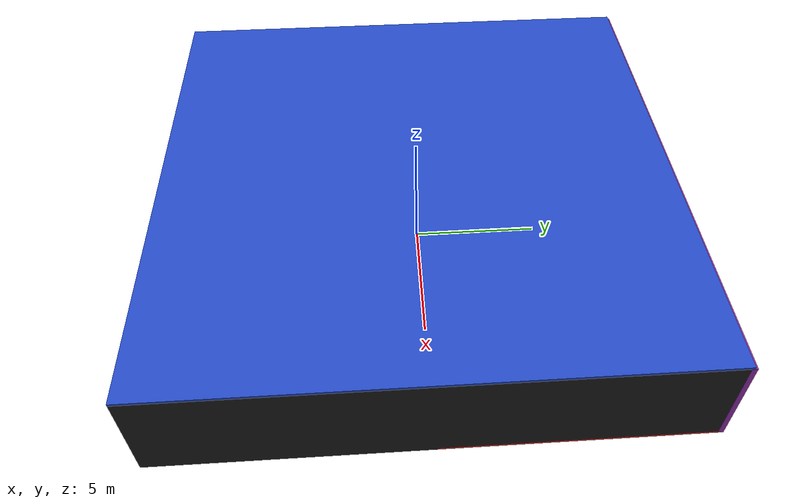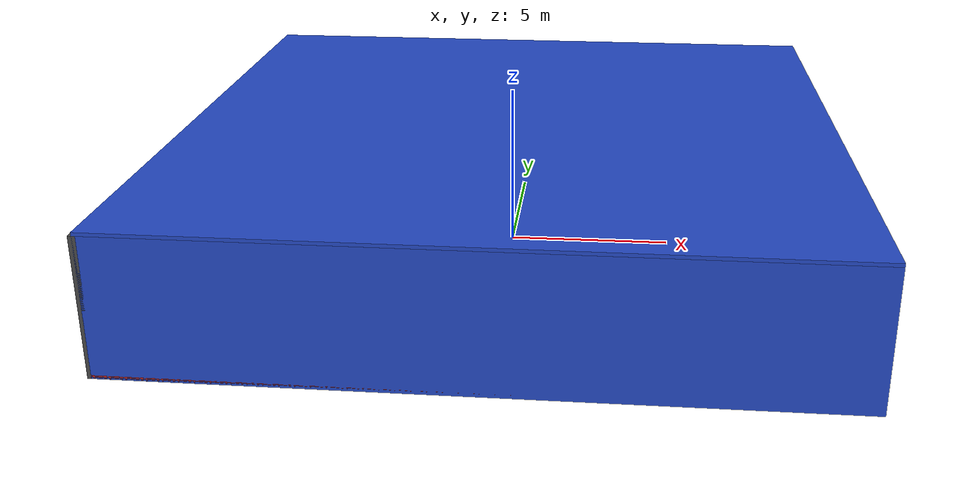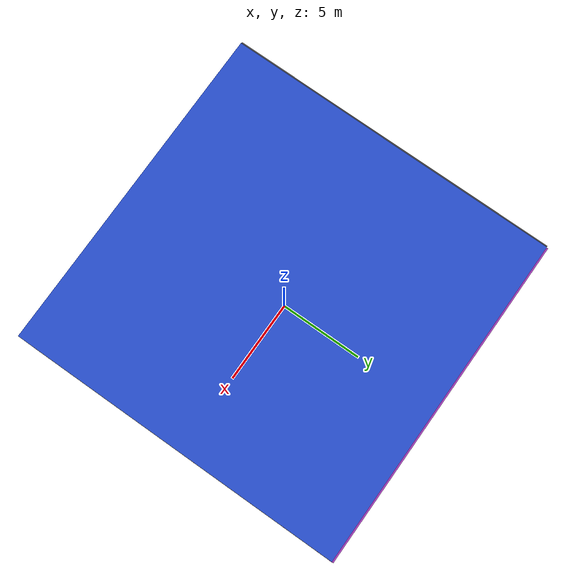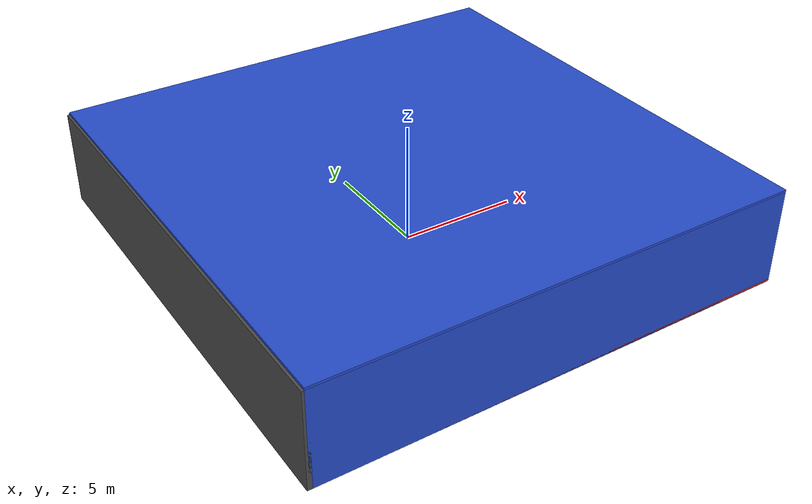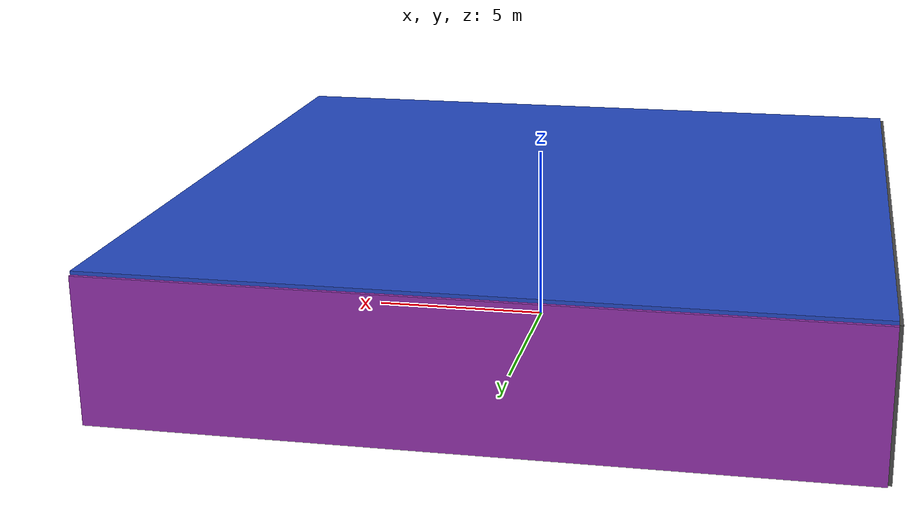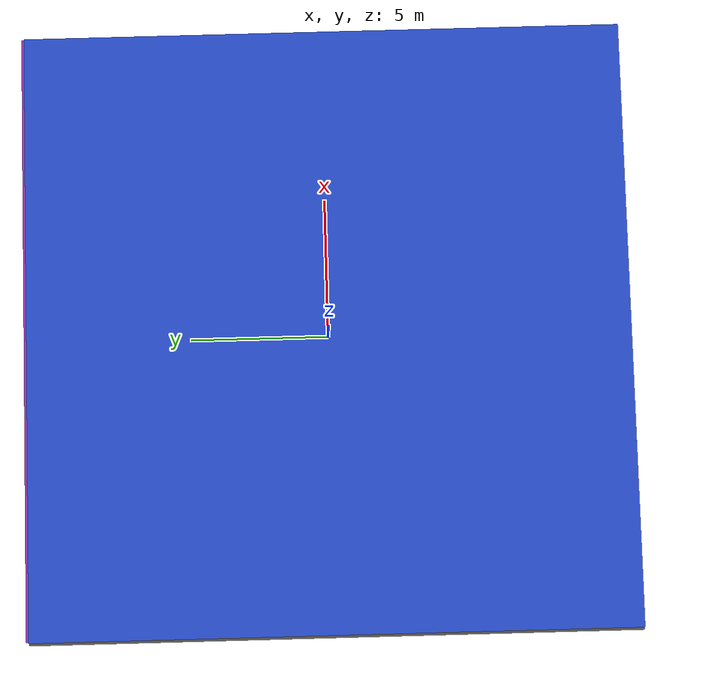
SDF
<sdf version="1.4">
 <world name="default">
  <physics type="ode">
   <max_step_size>0.001</max_step_size>
   <real_time_factor>1</real_time_factor>
   <real_time_update_rate>1000</real_time_update_rate>
   <gravity>0 0 -9.8</gravity>
  </physics>
  <scene><ambient>0.4 0.4 0.4 1</ambient><background>0.7 0.7 0.7 1</background><shadows>1</shadows></scene>
  <model name="Surrounding">
   <static>1</static>
   <link name="Ceiling">
    <collision name="Ceiling_Collision"><geometry><box><size>20 20 0.1</size></box></geometry></collision>
    <visual name="Ceiling_Visual">
     <geometry><box><size>20 20 0.1</size></box></geometry>
     <material>
      <script><uri>file://media/materials/scripts/gazebo.material</uri><name>Gazebo/BlueGlow</name></script>
     </material>
    </visual>
    <pose>0 0 4.05 0 0 0</pose>
   </link>
   <link name="Wall_South">
    <collision name="Wall_South_Collision">
     <geometry><box><size>20 0 4</size></box></geometry>
     <pose>0 0 2 0 -0 0</pose>
    </collision>
    <visual name="Wall_South_Visual">
     <pose>0 0 2 0 -0 0</pose>
     <geometry><box><size>20 0 4</size></box></geometry>
     <material>
      <script><uri>file://media/materials/scripts/gazebo.material</uri><name>Gazebo/Blue</name></script>
     </material>
    </visual>
    <velocity_decay><linear>0</linear><angular>0</angular></velocity_decay>
    <pose>0 -10 0 0 -0 0</pose>
   </link>
   <link name="Wall_East">
    <collision name="Wall_21_Collision">
     <geometry><box><size>20 0 4</size></box></geometry>
     <pose>0 0 2 0 -0 0</pose>
    </collision>
    <visual name="Wall_21_Visual">
     <pose>0 0 2 0 -0 0</pose>
     <geometry><box><size>20 0 4</size></box></geometry>
     <material>
      <script><uri>file://media/materials/scripts/gazebo.material</uri><name>Gazebo/Black</name></script>
     </material>
    </visual>
    <velocity_decay><linear>0</linear><angular>0</angular></velocity_decay>
    <pose>10 0 0 0 -0 1.5708</pose>
   </link>
   <link name="Wall_North">
    <collision name="Wall_22_Collision">
     <geometry><box><size>20 0.2 4</size></box></geometry>
     <pose>0 0 2 0 -0 0</pose>
    </collision>
    <visual name="Wall_22_Visual">
     <pose>0 0 2 0 -0 0</pose>
     <geometry><box><size>20 0.2 4</size></box></geometry>
     <material>
      <script><uri>file://media/materials/scripts/gazebo.material</uri><name>Gazebo/PurpleGlow</name></script>
     </material>
    </visual>
    <velocity_decay><linear>0</linear><angular>0</angular></velocity_decay>
    <pose>0 10 0 0 -0 0</pose>
   </link>
   <link name="Wall_West">
    <collision name="Wall_23_Collision">
     <geometry><box><size>20 0.2 4</size></box></geometry>
     <pose>0 0 2 0 -0 0</pose>
    </collision>
    <visual name="Wall_23_Visual">
     <pose>0 0 2 0 -0 0</pose>
     <geometry><box><size>20 0.2 4</size></box></geometry>
     <material>
      <script><uri>file://media/materials/scripts/gazebo.material</uri><name>Gazebo/DarkGrey</name></script>
     </material>
    </visual>
    <velocity_decay><linear>0</linear><angular>0</angular></velocity_decay>
    <pose>-10 0 0 0 0 -1.5708</pose>
   </link>
   <link name="Ground_link">
    <collision name="collision">
     <pose>0 0 .05 0 -0 0</pose>
     <geometry><box><size>20 20 0.1</size></box></geometry>
    </collision>
    <visual name="visual">
     <pose>0 0 .05 0 -0 0</pose>
     <geometry><box><size>20 20 0.1</size></box></geometry>
     <material>
      <script><uri>file://media/materials/scripts/gazebo.material</uri><name>Gazebo/Red</name></script>
     </material>
    </visual>
   </link>
   <static>1</static>
  </model>
  <spherical_coordinates>
   <surface_model>EARTH_WGS84</surface_model>
   <latitude_deg>0</latitude_deg>
   <longitude_deg>0</longitude_deg>
   <elevation>0</elevation>
   <heading_deg>0</heading_deg>
  </spherical_coordinates>
  <light name="lightball_0" type="diffuse">
   <diffuse>0.8 0.8 0.8 1</diffuse>
   <specular>0.2 0.2 0.2 1</specular>
   <attenuation>
    <range>100</range>
    <constant>0.7</constant>
    <linear>0.01</linear>
    <quadratic>0.001</quadratic>
   </attenuation>
   <direction>-0.5 0.1 -0.9</direction>
   <pose>5.4870467077 0.53209112282 1.72256998303 0 0 0</pose>
  </light>
  <light name="lightball_1" type="diffuse">
   <diffuse>0.8 0.8 0.8 1</diffuse>
   <specular>0.2 0.2 0.2 1</specular>
   <attenuation>
    <range>100</range>
    <constant>0.7</constant>
    <linear>0.01</linear>
    <quadratic>0.001</quadratic>
   </attenuation>
   <direction>-0.5 0.1 -0.9</direction>
   <pose>-2.71252501003 -1.30227594553 2.79910752604 0 0 0</pose>
  </light>
  <light name="lightball_2" type="diffuse">
   <diffuse>0.8 0.8 0.8 1</diffuse>
   <specular>0.2 0.2 0.2 1</specular>
   <attenuation>
    <range>100</range>
    <constant>0.7</constant>
    <linear>0.01</linear>
    <quadratic>0.001</quadratic>
   </attenuation>
   <direction>-0.5 0.1 -0.9</direction>
   <pose>-5.61203825923 -7.8083742749 2.90182385334 0 0 0</pose>
  </light>
  <include><uri>model://cabinet</uri><pose>-8.26841584089 1.25434030166 0 0 0 0.34938008253</pose></include>
  <include>
   <uri>model://textured_shapes</uri>
   <pose>-7.40993094471 6.92815425058 0 0 0 2.48738050676</pose>
  </include>
  <include>
   <uri>model://textured_shapes</uri>
   <pose>2.6533119129 -2.42542414552 0 0 0 1.16907445735</pose>
  </include>
 </world>
</sdf>

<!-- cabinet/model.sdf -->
<sdf version="1.5">
  <model name="cabinet">
    <static>true</static>
    <link name="cabinet_bottom_plate">
      <inertial>
        <pose>0 0 -1 0 0 0</pose>
        <inertia>
          <ixx>2.050000</ixx>
          <ixy>0</ixy>
          <ixz>0</ixz>
          <iyy>2.050000</iyy>
          <iyz>0</iyz>
          <izz>2.050000</izz>
        </inertia>
        <mass>25.000000</mass>
      </inertial>
      <collision name="cabinet_bottom_plate_geom">
        <pose>0 0 0.010000 0 0 0</pose>
        <geometry>
          <box>
            <size>0.450000 0.450000 0.020000</size>
          </box>
        </geometry>
      </collision>
      <visual name="cabinet_bottom_plate_geom_visual">
        <pose>0 0 0.010000 0 0 0</pose>
        <geometry>
          <box>
            <size>0.450000 0.450000 0.020000</size>
          </box>
        </geometry>
        <material>
          <script>
            <uri>model://media/materials/scripts/gazebo.material</uri>
            <name>Gazebo/Wood</name>
          </script>
        </material>
      </visual>
      <collision name="cabinet_bottom_plate_geom_cabinet_back_plate">
        <pose>0.235000 0 0.510000 0 0 0</pose>
        <geometry>
          <box>
            <size>0.020000 0.450000 1.020000</size>
          </box>
        </geometry>
      </collision>
      <visual name="cabinet_bottom_plate_geom_cabinet_back_plate_visual">
        <pose>0.235000 0 0.510000 0 0 0</pose>
        <geometry>
          <box>
            <size>0.020000 0.450000 1.020000</size>
          </box>
        </geometry>
        <material>
          <script>
            <uri>model://media/materials/scripts/gazebo.material</uri>
            <name>Gazebo/Wood</name>
          </script>
        </material>
      </visual>
      <collision name="cabinet_bottom_plate_geom_cabinet_left_plate">
        <pose>0 0.235000 0.510000 0 0 0</pose>
        <geometry>
          <box>
            <size>0.450000 0.020000 1.020000</size>
          </box>
        </geometry>
      </collision>
      <visual name="cabinet_bottom_plate_geom_cabinet_left_plate_visual">
        <pose>0 0.235000 0.510000 0 0 0</pose>
        <geometry>
          <box>
            <size>0.450000 0.020000 1.020000</size>
          </box>
        </geometry>
        <material>
          <script>
            <uri>model://media/materials/scripts/gazebo.material</uri>
            <name>Gazebo/Wood</name>
          </script>
        </material>
      </visual>
      <collision name="cabinet_bottom_plate_geom_cabinet_middle_plate">
        <pose>0 0 0.510000 0 0 0</pose>
        <geometry>
          <box>
            <size>0.450000 0.450000 0.020000</size>
          </box>
        </geometry>
      </collision>
      <visual name="cabinet_bottom_plate_geom_cabinet_middle_plate_visual">
        <pose>0 0 0.510000 0 0 0</pose>
        <geometry>
          <box>
            <size>0.450000 0.450000 0.020000</size>
          </box>
        </geometry>
        <material>
          <script>
            <uri>model://media/materials/scripts/gazebo.material</uri>
            <name>Gazebo/Wood</name>
          </script>
        </material>
      </visual>
      <collision name="cabinet_bottom_plate_geom_cabinet_right_plate">
        <pose>0 -0.235000 0.510000 0 0 0</pose>
        <geometry>
          <box>
            <size>0.450000 0.020000 1.020000</size>
          </box>
        </geometry>
      </collision>
      <visual name="cabinet_bottom_plate_geom_cabinet_right_plate_visual">
        <pose>0 -0.235000 0.510000 0 0 0</pose>
        <geometry>
          <box>
            <size>0.450000 0.020000 1.020000</size>
          </box>
        </geometry>
        <material>
          <script>
            <uri>model://media/materials/scripts/gazebo.material</uri>
            <name>Gazebo/Wood</name>
          </script>
        </material>
      </visual>
      <collision name="cabinet_bottom_plate_geom_cabinet_top_plate">
        <pose>0 0 1.010000 0 0 0</pose>
        <geometry>
          <box>
            <size>0.450000 0.450000 0.020000</size>
          </box>
        </geometry>
      </collision>
      <visual name="cabinet_bottom_plate_geom_cabinet_top_plate_visual">
        <pose>0 0 1.010000 0 0 0</pose>
        <geometry>
          <box>
            <size>0.450000 0.450000 0.020000</size>
          </box>
        </geometry>
        <material>
          <script>
            <uri>model://media/materials/scripts/gazebo.material</uri>
            <name>Gazebo/Wood</name>
          </script>
        </material>
      </visual>
    </link>
  </model>
</sdf>

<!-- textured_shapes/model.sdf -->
<sdf version="1.6">
  <model name="textured_shapes">
    <pose>0 0 0.5 0 0 0</pose>
    <link name="box">
      <pose>0 -1.5 0 0 0 0</pose>
      <collision name="collision">
        <geometry>
          <box>
            <size>1 1 1</size>
          </box>
        </geometry>
      </collision>
      <visual name="visual">
        <geometry>
          <box>
            <size>1 1 1</size>
          </box>
        </geometry>
        <material>
          <script>
            <uri>model://../model_source/models/textured_shapes/materials/scripts</uri>
            <uri>model://../model_source/models/textured_shapes/materials/textures</uri>
            <name>TexturedShape/Squares</name>
          </script>
        </material>
      </visual>
    </link>
    <link name="sphere">
      <collision name="collision">
        <geometry>
          <sphere>
            <radius>0.5</radius>
          </sphere>
        </geometry>
      </collision>
      <visual name="visual">
        <geometry>
          <sphere>
            <radius>0.5</radius>
          </sphere>
        </geometry>
        <material>
          <script>
            <uri>model://../model_source/models/textured_shapes/materials/scripts</uri>
            <uri>model://../model_source/models/textured_shapes/materials/textures</uri>
            <name>TexturedShape/Squares</name>
          </script>
        </material>
      </visual>
    </link>
    <link name="cylinder">
      <pose>0 1.5 0 0 0 0</pose>
      <collision name="collision">
        <geometry>
          <cylinder>
            <radius>0.5</radius>
            <length>1</length>
          </cylinder>
        </geometry>
      </collision>
      <visual name="visual">
        <geometry>
          <cylinder>
            <radius>0.5</radius>
            <length>1</length>
          </cylinder>
        </geometry>
        <material>
          <script>
            <uri>model://../model_source/models/textured_shapes/materials/scripts</uri>
            <uri>model://../model_source/models/textured_shapes/materials/textures</uri>
            <name>TexturedShape/Squares</name>
          </script>
        </material>
      </visual>
    </link>
  </model>
</sdf>
